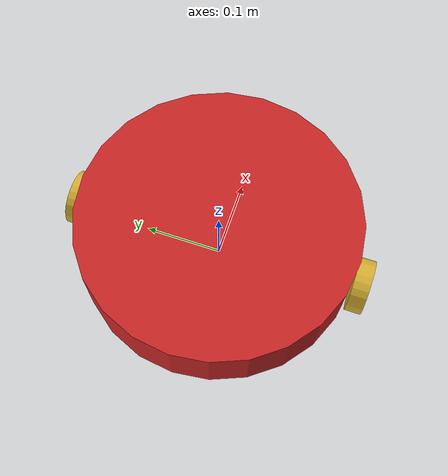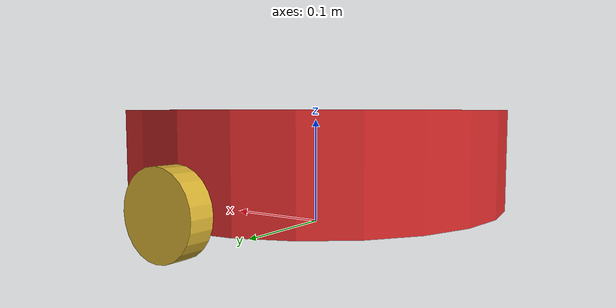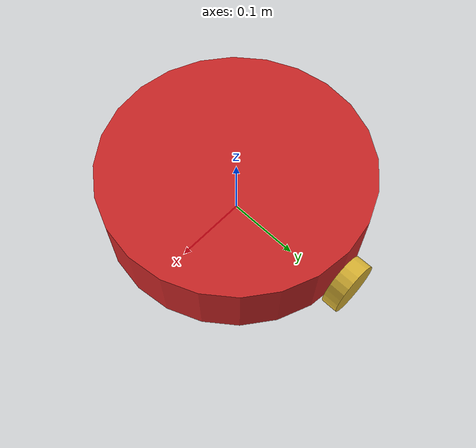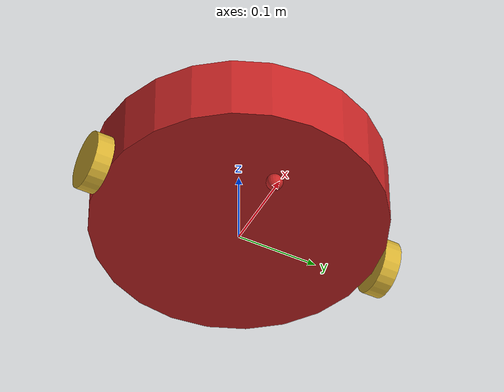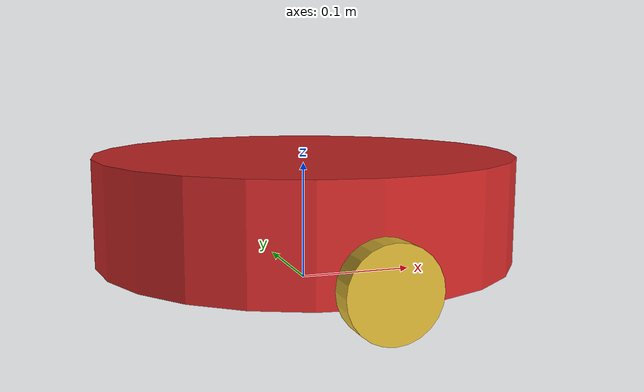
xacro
<?xml version='1.0'?>

<robot name="kobuki_rycsv_v3" xmlns:xacro="http://www.ros.org/wiki/xacro">

  <xacro:include filename="$(find kobuki_rycsv_v3_description)/urdf/kobuki_rycsv_v3.gazebo" />
  <xacro:include filename="$(find kobuki_rycsv_v3_description)/urdf/materials.xacro" />
  <xacro:include filename="$(find kobuki_rycsv_v3_description)/urdf/macros.xacro"/>

  <link name='chassis'>
    <pose>0 0 0.0645 0 0 0</pose>
    <inertial>
      <mass value="2.4"/>
      <origin xyz="0.0 0 0.0645" rpy=" 0 0 0"/>
      <inertia
          ixx="0.0001" ixy="0" ixz="0"
          iyy="0.0001" iyz="0"
          izz="0.0001"
      />
    </inertial>

    <collision name='collision'>
      <geometry>
        <cylinder length=".089" radius=".177"/>
      </geometry>
    </collision>

    <visual name='chassis_visual'>
      <origin xyz="0 0 0.0645" rpy=" 0 0 0"/>
      <geometry>
        <cylinder length=".089" radius=".177"/>
      </geometry>
    </visual>

    <collision name='caster_collision'>
      <origin rpy="0 0 0" xyz="0.0885 0 0.01"/>
      <geometry>
        <sphere radius="0.01"/>
      </geometry>
      <surface>
        <friction>
          <ode>
            <mu>0</mu>
            <mu2>0</mu2>
            <slip1>1.0</slip1>
            <slip2>1.0</slip2>
          </ode>
        </friction>
      </surface>
    </collision>

    <visual name='caster_visual'>
      <origin rpy="0 0 0" xyz="0.0885 0 0.01"/>
      <geometry>
        <sphere radius=".01"/>
      </geometry>
    </visual>
  </link>

  <link name="left_wheel">
    <!--origin xyz="0 -188 0.035" rpy="0 1.5707 1.5707"/-->
    <collision name="collision">
      <origin rpy="0 1.5707 1.5707" xyz="0 0 0.035"/>
      <geometry>
        <cylinder length=".021" radius=".035"/>
      </geometry>
    </collision>
    <visual name="left_wheel_visual">
      <origin rpy="0 1.5707 1.5707" xyz="0 0 0.035"/>
      <geometry>
        <cylinder length=".021" radius=".035"/>
      </geometry>
    </visual>
    <inertial>
      <origin rpy="0 1.5707 1.5707" xyz="0 0 0.035"/>
      <mass value="0.01"/>
      <cylinder_inertia m="0.01" r="0.035" h="0.021"/>
      <inertia
        ixx="0.001" ixy="0.0" ixz="0.0"
        iyy="0.001" iyz="0.0"
        izz="0.001"/>
    </inertial>
  </link>

  <link name="right_wheel">
    <!--origin xyz="0 188 0.035" rpy="0 1.5707 1.5707"/-->
    <collision name="collision">
      <origin rpy="0 1.5707 1.5707" xyz="0 0 0.035"/>
      <geometry>
        <cylinder length=".021" radius=".035"/>
      </geometry>
    </collision>
    <visual name="right_wheel_visual">
      <origin rpy="0 1.5707 1.5707" xyz="0 0 0.035"/>
      <geometry>
        <cylinder length=".021" radius=".035"/>
      </geometry>
    </visual>
    <inertial>
      <origin rpy="0 1.5707 1.5707" xyz="0 0 0.035"/>
      <mass value="0.01"/>
      <cylinder_inertia m="0.01" r="0.035" h="0.021"/>
      <inertia
        ixx="0.001" ixy="0.0" ixz="0.0"
        iyy="0.001" iyz="0.0"
        izz="0.001"/>
    </inertial>
  </link>

  <joint type="continuous" name="left_wheel_hinge">
    <origin xyz="0 -0.188 0" rpy="0 0 0"/>
    <child link="left_wheel"/>
    <parent link="chassis"/>
    <axis xyz="0 1 0" rpy="0 0 0"/>
    <limit effort="100" velocity="100"/>
    <joint_properties damping="0.0" friction="0.0"/>
  </joint>

  <joint type="continuous" name="right_wheel_hinge">
    <origin xyz="0 0.188 0" rpy="0 0 0"/>
    <child link="right_wheel"/>
    <parent link="chassis"/>
    <axis xyz="0 1 0" rpy="0 0 0"/>
    <limit effort="100" velocity="100"/>
    <joint_properties damping="0.0" friction="0.0"/>
  </joint>

</robot>

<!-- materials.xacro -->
<robot>

  <material name="black">
    <color rgba="0.0 0.0 0.0 1.0"/>
  </material>

  <material name="blue">
    <color rgba="0.0 0.0 0.8 1.0"/>
  </material>

  <material name="green">
    <color rgba="0.0 0.8 0.0 1.0"/>
  </material>

  <material name="grey">
    <color rgba="0.2 0.2 0.2 1.0"/>
  </material>

  <material name="orange">
    <color rgba="${255/255} ${108/255} ${10/255} 1.0"/>
  </material>

  <material name="brown">
    <color rgba="${222/255} ${207/255} ${195/255} 1.0"/>
  </material>

  <material name="red">
    <color rgba="0.8 0.0 0.0 1.0"/>
  </material>

  <material name="white">
    <color rgba="1.0 1.0 1.0 1.0"/>
  </material>

  <material name="yellow">
    <color rgba="{218/255} ${165/255} ${32/255} 1.0"/>
  </material>

</robot>

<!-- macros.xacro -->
<robot>
  <macro name="cylinder_inertia" params="m r h">
    <inertia  ixx="${m*(3*r*r+h*h)/12}" ixy = "0" ixz = "0"
      iyy="${m*(3*r*r+h*h)/12}" iyz = "0"
      izz="${m*r*r/2}"
    />
  </macro>

  <macro name="sphere_inertia" params="m r">
    <inertia  ixx="${2*m*r*r/5}" ixy = "0" ixz = "0"
      iyy="${2*m*r*r/5}" iyz = "0"
      izz="${2*m*r*r/5}"
    />
  </macro>

  <macro name="wheel" params="lr tY">

    <link name="${lr}_wheel">
      <collision>
        <origin xyz="0 0 0" rpy="0 ${PI/2} ${PI/2}" />
        <geometry>
          <cylinder length="${wheelWidth}" radius="${wheelRadius}"/>
        </geometry>
      </collision>

      <visual>
        <origin xyz="0 0 0" rpy="0 ${PI/2} ${PI/2}" />
        <geometry>
          <cylinder length="${wheelWidth}" radius="${wheelRadius}"/>
        </geometry>
        <material name="black"/>
      </visual>

      <inertial>
        <origin xyz="0 0 0" rpy="0 ${PI/2} ${PI/2}" />
        <mass value="${wheelMass}"/>
        <cylinder_inertia m="${wheelMass}" r="${wheelRadius}" h="${wheelWidth}"/>
      </inertial>
    </link>

    <gazebo reference="${lr}_wheel">
      <mu1 value="1.0"/>
      <mu2 value="1.0"/>
      <kp  value="10000000.0" />
      <kd  value="1.0" />
      <fdir1 value="1 0 0"/>
      <material>Gazebo/Black</material>
    </gazebo>

    <joint name="${lr}_wheel_hinge" type="continuous">
      <parent link="chassis"/>
      <child link="${lr}_wheel"/>
    <origin xyz="${-wheelPos+chassisLength/2} ${tY*wheelWidth/2+tY*chassisWidth/2} ${wheelRadius}" rpy="0 0 0" />
      <axis xyz="0 1 0" rpy="0 0 0" />
      <limit effort="10000" velocity="10000"/>
      <joint_properties damping="0.0" friction="0.0"/>
    </joint>

    <transmission name="${lr}_trans">
      <type>transmission_interface/SimpleTransmission</type>
      <joint name="${lr}_wheel_hinge">
        <hardwareInterface>EffortJointInterface</hardwareInterface>
      </joint>
      <actuator name="${lr}Motor">
        <hardwareInterface>EffortJointInterface</hardwareInterface>
        <mechanicalReduction>10</mechanicalReduction>
      </actuator>
    </transmission>

  </macro>

</robot>
